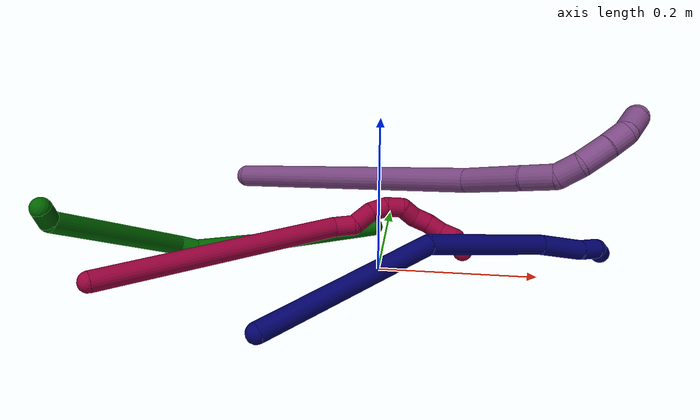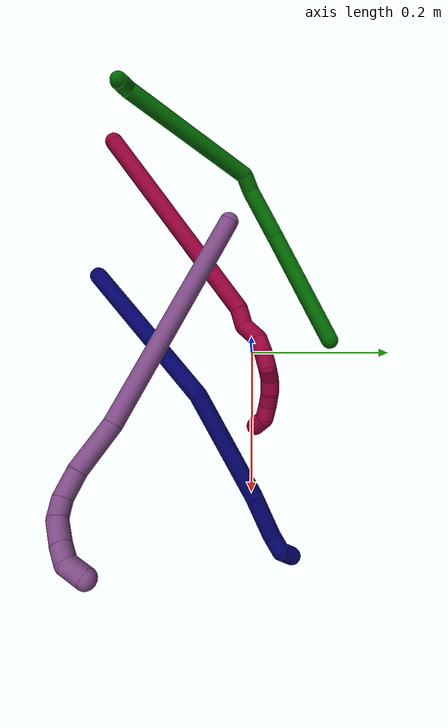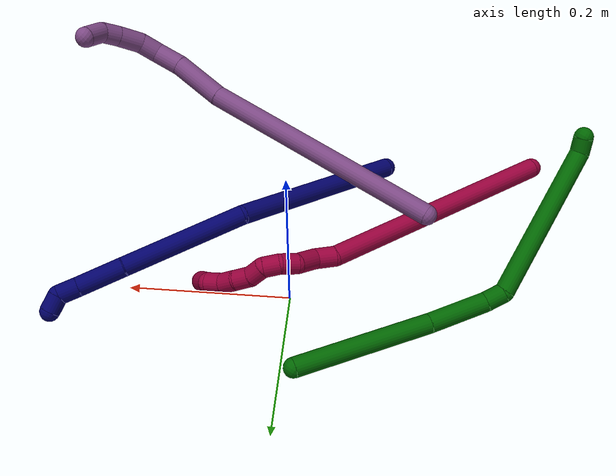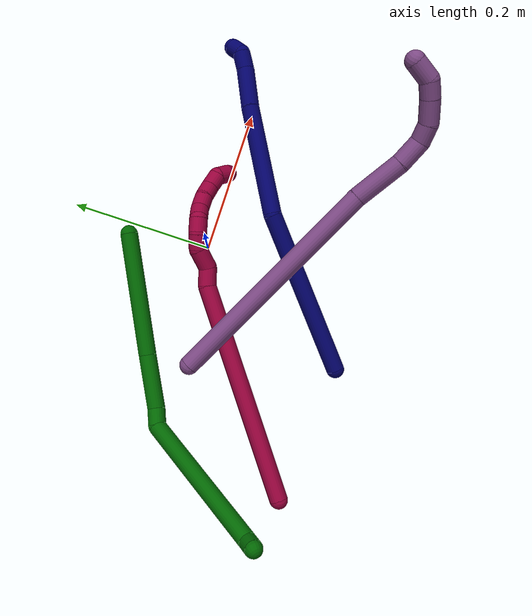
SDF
<sdf version="1.7">
 <world name="default">
  <model name="6">
   <static>0</static>
   <link name="6">
    <collision name="collision-cylinder-e_1_1_4">
     <pose>-0.003291 -0.003334 -0.009466 2.80295 -0.316846 -1.5031</pose>
     <geometry><cylinder><radius>0.0125</radius><length>0.021124</length></cylinder></geometry>
     <surface>
      <friction><ode><mu>1.16</mu><mu2>1.16</mu2><slip1>0</slip1><slip2>0</slip2></ode></friction>
      <contact><ode><kp>1e+06</kp><kd>1</kd><max_vel>0</max_vel><min_depth>0.001</min_depth></ode></contact>
     </surface>
    </collision>
    <visual name="visual-cylinder-e_1_1_4">
     <pose>-0.003291 -0.003334 -0.009466 2.80295 -0.316846 -1.5031</pose>
     <geometry><cylinder><radius>0.0125</radius><length>0.021124</length></cylinder></geometry>
     <material><ambient>0 0.392157 0.003922 1</ambient></material>
    </visual>
    <collision name="collision-cylinder-e_2_4_5">
     <pose>-0.011107 0.020257 -0.116627 -2.87266 -0.044626 0.326982</pose>
     <geometry><cylinder><radius>0.0125</radius><length>0.202875</length></cylinder></geometry>
     <surface>
      <friction><ode><mu>1.16</mu><mu2>1.16</mu2><slip1>0</slip1><slip2>0</slip2></ode></friction>
      <contact><ode><kp>1e+06</kp><kd>1</kd><max_vel>0</max_vel><min_depth>0.001</min_depth></ode></contact>
     </surface>
    </collision>
    <visual name="visual-cylinder-e_2_4_5">
     <pose>-0.011107 0.020257 -0.116627 -2.87266 -0.044626 0.326982</pose>
     <geometry><cylinder><radius>0.0125</radius><length>0.202875</length></cylinder></geometry>
     <material><ambient>0 0.392157 0.003922 1</ambient></material>
    </visual>
    <collision name="collision-cylinder-e_3_5_6">
     <pose>-0.009254 0.048032 -0.225055 -3.06265 0.534796 -2.85525</pose>
     <geometry><cylinder><radius>0.0125</radius><length>0.02503</length></cylinder></geometry>
     <surface>
      <friction><ode><mu>1.16</mu><mu2>1.16</mu2><slip1>0</slip1><slip2>0</slip2></ode></friction>
      <contact><ode><kp>1e+06</kp><kd>1</kd><max_vel>0</max_vel><min_depth>0.001</min_depth></ode></contact>
     </surface>
    </collision>
    <visual name="visual-cylinder-e_3_5_6">
     <pose>-0.009254 0.048032 -0.225055 -3.06265 0.534796 -2.85525</pose>
     <geometry><cylinder><radius>0.0125</radius><length>0.02503</length></cylinder></geometry>
     <material><ambient>0 0.392157 0.003922 1</ambient></material>
    </visual>
    <collision name="collision-cylinder-e_4_6_7">
     <pose>0.019598 0.062392 -0.263879 -2.69327 0.624649 -1.91198</pose>
     <geometry><cylinder><radius>0.0125</radius><length>0.076855</length></cylinder></geometry>
     <surface>
      <friction><ode><mu>1.16</mu><mu2>1.16</mu2><slip1>0</slip1><slip2>0</slip2></ode></friction>
      <contact><ode><kp>1e+06</kp><kd>1</kd><max_vel>0</max_vel><min_depth>0.001</min_depth></ode></contact>
     </surface>
    </collision>
    <visual name="visual-cylinder-e_4_6_7">
     <pose>0.019598 0.062392 -0.263879 -2.69327 0.624649 -1.91198</pose>
     <geometry><cylinder><radius>0.0125</radius><length>0.076855</length></cylinder></geometry>
     <material><ambient>0 0.392157 0.003922 1</ambient></material>
    </visual>
    <collision name="collision-cylinder-e_5_7_2">
     <pose>0.095633 0.108959 -0.352115 -2.63907 0.662712 -1.8596</pose>
     <geometry><cylinder><radius>0.0125</radius><length>0.174116</length></cylinder></geometry>
     <surface>
      <friction><ode><mu>1.16</mu><mu2>1.16</mu2><slip1>0</slip1><slip2>0</slip2></ode></friction>
      <contact><ode><kp>1e+06</kp><kd>1</kd><max_vel>0</max_vel><min_depth>0.001</min_depth></ode></contact>
     </surface>
    </collision>
    <visual name="visual-cylinder-e_5_7_2">
     <pose>0.095633 0.108959 -0.352115 -2.63907 0.662712 -1.8596</pose>
     <geometry><cylinder><radius>0.0125</radius><length>0.174116</length></cylinder></geometry>
     <material><ambient>0 0.392157 0.003922 1</ambient></material>
    </visual>
    <collision name="collision-sphere-2">
     <pose>0.149196 0.142013 -0.412261 0 -0 0</pose>
     <geometry><sphere><radius>0.0125</radius></sphere></geometry>
     <surface>
      <friction><ode><mu>1.16</mu><mu2>1.16</mu2><slip1>0</slip1><slip2>0</slip2></ode></friction>
      <contact><ode><kp>1e+06</kp><kd>1</kd><max_vel>0</max_vel><min_depth>0.001</min_depth></ode></contact>
     </surface>
    </collision>
    <visual name="visual-sphere-2">
     <pose>0.149196 0.142013 -0.412261 0 -0 0</pose>
     <geometry><sphere><radius>0.0125</radius></sphere></geometry>
     <material><ambient>0 0.392157 0.003922 1</ambient></material>
    </visual>
    <collision name="collision-sphere-7">
     <pose>0.04207 0.075904 -0.29197 0 -0 0</pose>
     <geometry><sphere><radius>0.0125</radius></sphere></geometry>
     <surface>
      <friction><ode><mu>1.16</mu><mu2>1.16</mu2><slip1>0</slip1><slip2>0</slip2></ode></friction>
      <contact><ode><kp>1e+06</kp><kd>1</kd><max_vel>0</max_vel><min_depth>0.001</min_depth></ode></contact>
     </surface>
    </collision>
    <visual name="visual-sphere-7">
     <pose>0.04207 0.075904 -0.29197 0 -0 0</pose>
     <geometry><sphere><radius>0.0125</radius></sphere></geometry>
     <material><ambient>0 0.392157 0.003922 1</ambient></material>
    </visual>
    <collision name="collision-sphere-6">
     <pose>-0.002875 0.048881 -0.235789 0 -0 0</pose>
     <geometry><sphere><radius>0.0125</radius></sphere></geometry>
     <surface>
      <friction><ode><mu>1.16</mu><mu2>1.16</mu2><slip1>0</slip1><slip2>0</slip2></ode></friction>
      <contact><ode><kp>1e+06</kp><kd>1</kd><max_vel>0</max_vel><min_depth>0.001</min_depth></ode></contact>
     </surface>
    </collision>
    <visual name="visual-sphere-6">
     <pose>-0.002875 0.048881 -0.235789 0 -0 0</pose>
     <geometry><sphere><radius>0.0125</radius></sphere></geometry>
     <material><ambient>0 0.392157 0.003922 1</ambient></material>
    </visual>
    <collision name="collision-sphere-5">
     <pose>-0.015632 0.047183 -0.214321 0 -0 0</pose>
     <geometry><sphere><radius>0.0125</radius></sphere></geometry>
     <surface>
      <friction><ode><mu>1.16</mu><mu2>1.16</mu2><slip1>0</slip1><slip2>0</slip2></ode></friction>
      <contact><ode><kp>1e+06</kp><kd>1</kd><max_vel>0</max_vel><min_depth>0.001</min_depth></ode></contact>
     </surface>
    </collision>
    <visual name="visual-sphere-5">
     <pose>-0.015632 0.047183 -0.214321 0 -0 0</pose>
     <geometry><sphere><radius>0.0125</radius></sphere></geometry>
     <material><ambient>0 0.392157 0.003922 1</ambient></material>
    </visual>
    <collision name="collision-sphere-1">
     <geometry><sphere><radius>0.0125</radius></sphere></geometry>
     <surface>
      <friction><ode><mu>1.16</mu><mu2>1.16</mu2><slip1>0</slip1><slip2>0</slip2></ode></friction>
      <contact><ode><kp>1e+06</kp><kd>1</kd><max_vel>0</max_vel><min_depth>0.001</min_depth></ode></contact>
     </surface>
    </collision>
    <visual name="visual-sphere-1">
     <geometry><sphere><radius>0.0125</radius></sphere></geometry>
     <material><ambient>0 0.392157 0.003922 1</ambient></material>
    </visual>
    <collision name="collision-sphere-4">
     <pose>-0.006582 -0.006668 -0.018933 0 -0 0</pose>
     <geometry><sphere><radius>0.0125</radius></sphere></geometry>
     <surface>
      <friction><ode><mu>1.16</mu><mu2>1.16</mu2><slip1>0</slip1><slip2>0</slip2></ode></friction>
      <contact><ode><kp>1e+06</kp><kd>1</kd><max_vel>0</max_vel><min_depth>0.001</min_depth></ode></contact>
     </surface>
    </collision>
    <visual name="visual-sphere-4">
     <pose>-0.006582 -0.006668 -0.018933 0 -0 0</pose>
     <geometry><sphere><radius>0.0125</radius></sphere></geometry>
     <material><ambient>0 0.392157 0.003922 1</ambient></material>
    </visual>
    <inertial>
     <pose>0.031206 0.058016 -0.222166 0 -0 0</pose>
     <mass>0.5</mass>
     <inertia>
      <ixx>0.000419</ixx>
      <ixy>0</ixy>
      <ixz>0</ixz>
      <iyy>-0.000511</iyy>
      <iyz>0</iyz>
      <izz>-0.000671</izz>
     </inertia>
    </inertial>
   </link>
   <pose>-0.351128 -0.178653 0.135947 0.81982 -0.305247 -0.396053</pose>
  </model>
  <model name="7">
   <static>0</static>
   <link name="7">
    <collision name="collision-cylinder-e_1_1_4">
     <pose>0.075705 0.045962 -0.076062 -2.59804 0.705569 -1.84583</pose>
     <geometry><cylinder><radius>0.0125</radius><length>0.233488</length></cylinder></geometry>
     <surface>
      <friction><ode><mu>1.16</mu><mu2>1.16</mu2><slip1>0</slip1><slip2>0</slip2></ode></friction>
      <contact><ode><kp>1e+06</kp><kd>1</kd><max_vel>0</max_vel><min_depth>0.001</min_depth></ode></contact>
     </surface>
    </collision>
    <visual name="visual-cylinder-e_1_1_4">
     <pose>0.075705 0.045962 -0.076062 -2.59804 0.705569 -1.84583</pose>
     <geometry><cylinder><radius>0.0125</radius><length>0.233488</length></cylinder></geometry>
     <material><ambient>0.003922 0 0.403922 1</ambient></material>
    </visual>
    <collision name="collision-cylinder-e_2_4_5">
     <pose>0.206139 0.091307 -0.209492 3.13085 0.761841 3.11477</pose>
     <geometry><cylinder><radius>0.0125</radius><length>0.158578</length></cylinder></geometry>
     <surface>
      <friction><ode><mu>1.16</mu><mu2>1.16</mu2><slip1>0</slip1><slip2>0</slip2></ode></friction>
      <contact><ode><kp>1e+06</kp><kd>1</kd><max_vel>0</max_vel><min_depth>0.001</min_depth></ode></contact>
     </surface>
    </collision>
    <visual name="visual-cylinder-e_2_4_5">
     <pose>0.206139 0.091307 -0.209492 3.13085 0.761841 3.11477</pose>
     <geometry><cylinder><radius>0.0125</radius><length>0.158578</length></cylinder></geometry>
     <material><ambient>0.003922 0 0.403922 1</ambient></material>
    </visual>
    <collision name="collision-cylinder-e_3_5_6">
     <pose>0.281809 0.086966 -0.288148 2.96839 0.769643 2.71926</pose>
     <geometry><cylinder><radius>0.0125</radius><length>0.060185</length></cylinder></geometry>
     <surface>
      <friction><ode><mu>1.16</mu><mu2>1.16</mu2><slip1>0</slip1><slip2>0</slip2></ode></friction>
      <contact><ode><kp>1e+06</kp><kd>1</kd><max_vel>0</max_vel><min_depth>0.001</min_depth></ode></contact>
     </surface>
    </collision>
    <visual name="visual-cylinder-e_3_5_6">
     <pose>0.281809 0.086966 -0.288148 2.96839 0.769643 2.71926</pose>
     <geometry><cylinder><radius>0.0125</radius><length>0.060185</length></cylinder></geometry>
     <material><ambient>0.003922 0 0.403922 1</ambient></material>
    </visual>
    <collision name="collision-cylinder-e_4_6_7">
     <pose>0.311758 0.083971 -0.318772 -3.06366 0.766004 -2.94867</pose>
     <geometry><cylinder><radius>0.0125</radius><length>0.025988</length></cylinder></geometry>
     <surface>
      <friction><ode><mu>1.16</mu><mu2>1.16</mu2><slip1>0</slip1><slip2>0</slip2></ode></friction>
      <contact><ode><kp>1e+06</kp><kd>1</kd><max_vel>0</max_vel><min_depth>0.001</min_depth></ode></contact>
     </surface>
    </collision>
    <visual name="visual-cylinder-e_4_6_7">
     <pose>0.311758 0.083971 -0.318772 -3.06366 0.766004 -2.94867</pose>
     <geometry><cylinder><radius>0.0125</radius><length>0.025988</length></cylinder></geometry>
     <material><ambient>0.003922 0 0.403922 1</ambient></material>
    </visual>
    <collision name="collision-cylinder-e_5_7_2">
     <pose>0.321606 0.082952 -0.338814 2.97973 0.077251 0.889294</pose>
     <geometry><cylinder><radius>0.0125</radius><length>0.021761</length></cylinder></geometry>
     <surface>
      <friction><ode><mu>1.16</mu><mu2>1.16</mu2><slip1>0</slip1><slip2>0</slip2></ode></friction>
      <contact><ode><kp>1e+06</kp><kd>1</kd><max_vel>0</max_vel><min_depth>0.001</min_depth></ode></contact>
     </surface>
    </collision>
    <visual name="visual-cylinder-e_5_7_2">
     <pose>0.321606 0.082952 -0.338814 2.97973 0.077251 0.889294</pose>
     <geometry><cylinder><radius>0.0125</radius><length>0.021761</length></cylinder></geometry>
     <material><ambient>0.003922 0 0.403922 1</ambient></material>
    </visual>
    <collision name="collision-sphere-2">
     <pose>0.322446 0.081204 -0.349521 0 -0 0</pose>
     <geometry><sphere><radius>0.0125</radius></sphere></geometry>
     <surface>
      <friction><ode><mu>1.16</mu><mu2>1.16</mu2><slip1>0</slip1><slip2>0</slip2></ode></friction>
      <contact><ode><kp>1e+06</kp><kd>1</kd><max_vel>0</max_vel><min_depth>0.001</min_depth></ode></contact>
     </surface>
    </collision>
    <visual name="visual-sphere-2">
     <pose>0.322446 0.081204 -0.349521 0 -0 0</pose>
     <geometry><sphere><radius>0.0125</radius></sphere></geometry>
     <material><ambient>0.003922 0 0.403922 1</ambient></material>
    </visual>
    <collision name="collision-sphere-7">
     <pose>0.320766 0.0847 -0.328108 0 -0 0</pose>
     <geometry><sphere><radius>0.0125</radius></sphere></geometry>
     <surface>
      <friction><ode><mu>1.16</mu><mu2>1.16</mu2><slip1>0</slip1><slip2>0</slip2></ode></friction>
      <contact><ode><kp>1e+06</kp><kd>1</kd><max_vel>0</max_vel><min_depth>0.001</min_depth></ode></contact>
     </surface>
    </collision>
    <visual name="visual-sphere-7">
     <pose>0.320766 0.0847 -0.328108 0 -0 0</pose>
     <geometry><sphere><radius>0.0125</radius></sphere></geometry>
     <material><ambient>0.003922 0 0.403922 1</ambient></material>
    </visual>
    <collision name="collision-sphere-6">
     <pose>0.30275 0.083242 -0.309436 0 -0 0</pose>
     <geometry><sphere><radius>0.0125</radius></sphere></geometry>
     <surface>
      <friction><ode><mu>1.16</mu><mu2>1.16</mu2><slip1>0</slip1><slip2>0</slip2></ode></friction>
      <contact><ode><kp>1e+06</kp><kd>1</kd><max_vel>0</max_vel><min_depth>0.001</min_depth></ode></contact>
     </surface>
    </collision>
    <visual name="visual-sphere-6">
     <pose>0.30275 0.083242 -0.309436 0 -0 0</pose>
     <geometry><sphere><radius>0.0125</radius></sphere></geometry>
     <material><ambient>0.003922 0 0.403922 1</ambient></material>
    </visual>
    <collision name="collision-sphere-5">
     <pose>0.260868 0.090691 -0.26686 0 -0 0</pose>
     <geometry><sphere><radius>0.0125</radius></sphere></geometry>
     <surface>
      <friction><ode><mu>1.16</mu><mu2>1.16</mu2><slip1>0</slip1><slip2>0</slip2></ode></friction>
      <contact><ode><kp>1e+06</kp><kd>1</kd><max_vel>0</max_vel><min_depth>0.001</min_depth></ode></contact>
     </surface>
    </collision>
    <visual name="visual-sphere-5">
     <pose>0.260868 0.090691 -0.26686 0 -0 0</pose>
     <geometry><sphere><radius>0.0125</radius></sphere></geometry>
     <material><ambient>0.003922 0 0.403922 1</ambient></material>
    </visual>
    <collision name="collision-sphere-1">
     <geometry><sphere><radius>0.0125</radius></sphere></geometry>
     <surface>
      <friction><ode><mu>1.16</mu><mu2>1.16</mu2><slip1>0</slip1><slip2>0</slip2></ode></friction>
      <contact><ode><kp>1e+06</kp><kd>1</kd><max_vel>0</max_vel><min_depth>0.001</min_depth></ode></contact>
     </surface>
    </collision>
    <visual name="visual-sphere-1">
     <geometry><sphere><radius>0.0125</radius></sphere></geometry>
     <material><ambient>0.003922 0 0.403922 1</ambient></material>
    </visual>
    <collision name="collision-sphere-4">
     <pose>0.151409 0.091923 -0.152125 0 -0 0</pose>
     <geometry><sphere><radius>0.0125</radius></sphere></geometry>
     <surface>
      <friction><ode><mu>1.16</mu><mu2>1.16</mu2><slip1>0</slip1><slip2>0</slip2></ode></friction>
      <contact><ode><kp>1e+06</kp><kd>1</kd><max_vel>0</max_vel><min_depth>0.001</min_depth></ode></contact>
     </surface>
    </collision>
    <visual name="visual-sphere-4">
     <pose>0.151409 0.091923 -0.152125 0 -0 0</pose>
     <geometry><sphere><radius>0.0125</radius></sphere></geometry>
     <material><ambient>0.003922 0 0.403922 1</ambient></material>
    </visual>
    <inertial>
     <pose>0.164853 0.068865 -0.16796 0 -0 0</pose>
     <mass>0.5</mass>
     <inertia>
      <ixx>-0.001225</ixx>
      <ixy>0</ixy>
      <ixz>0</ixz>
      <iyy>0.000189</iyy>
      <iyz>0</iyz>
      <izz>-0.001387</izz>
     </inertia>
    </inertial>
   </link>
   <pose>-0.107982 -0.222675 0.025073 1.03193 -0.291861 -0.169791</pose>
  </model>
  <model name="8">
   <static>0</static>
   <link name="8">
    <collision name="collision-cylinder-e_1_1_4">
     <pose>0.097323 0.080687 0.083396 -0.76889 0.697895 -0.2923</pose>
     <geometry><cylinder><radius>0.0125</radius><length>0.3029</length></cylinder></geometry>
     <surface>
      <friction><ode><mu>1.16</mu><mu2>1.16</mu2><slip1>0</slip1><slip2>0</slip2></ode></friction>
      <contact><ode><kp>1e+06</kp><kd>1</kd><max_vel>0</max_vel><min_depth>0.001</min_depth></ode></contact>
     </surface>
    </collision>
    <visual name="visual-cylinder-e_1_1_4">
     <pose>0.097323 0.080687 0.083396 -0.76889 0.697895 -0.2923</pose>
     <geometry><cylinder><radius>0.0125</radius><length>0.3029</length></cylinder></geometry>
     <material><ambient>0.584314 0 0.227451 1</ambient></material>
    </visual>
    <collision name="collision-cylinder-e_2_4_5">
     <pose>0.20428 0.16406 0.174714 -0.326809 0.855899 -0.150129</pose>
     <geometry><cylinder><radius>0.0125</radius><length>0.025517</length></cylinder></geometry>
     <surface>
      <friction><ode><mu>1.16</mu><mu2>1.16</mu2><slip1>0</slip1><slip2>0</slip2></ode></friction>
      <contact><ode><kp>1e+06</kp><kd>1</kd><max_vel>0</max_vel><min_depth>0.001</min_depth></ode></contact>
     </surface>
    </collision>
    <visual name="visual-cylinder-e_2_4_5">
     <pose>0.20428 0.16406 0.174714 -0.326809 0.855899 -0.150129</pose>
     <geometry><cylinder><radius>0.0125</radius><length>0.025517</length></cylinder></geometry>
     <material><ambient>0.584314 0 0.227451 1</ambient></material>
    </visual>
    <collision name="collision-cylinder-e_3_5_6">
     <pose>0.218271 0.175131 0.193833 -0.642772 0.301845 -0.101177</pose>
     <geometry><cylinder><radius>0.0125</radius><length>0.029307</length></cylinder></geometry>
     <surface>
      <friction><ode><mu>1.16</mu><mu2>1.16</mu2><slip1>0</slip1><slip2>0</slip2></ode></friction>
      <contact><ode><kp>1e+06</kp><kd>1</kd><max_vel>0</max_vel><min_depth>0.001</min_depth></ode></contact>
     </surface>
    </collision>
    <visual name="visual-cylinder-e_3_5_6">
     <pose>0.218271 0.175131 0.193833 -0.642772 0.301845 -0.101177</pose>
     <geometry><cylinder><radius>0.0125</radius><length>0.029307</length></cylinder></geometry>
     <material><ambient>0.584314 0 0.227451 1</ambient></material>
    </visual>
    <collision name="collision-cylinder-e_4_6_7">
     <pose>0.229137 0.185973 0.213304 -0.288583 0.646324 -0.097247</pose>
     <geometry><cylinder><radius>0.0125</radius><length>0.021618</length></cylinder></geometry>
     <surface>
      <friction><ode><mu>1.16</mu><mu2>1.16</mu2><slip1>0</slip1><slip2>0</slip2></ode></friction>
      <contact><ode><kp>1e+06</kp><kd>1</kd><max_vel>0</max_vel><min_depth>0.001</min_depth></ode></contact>
     </surface>
    </collision>
    <visual name="visual-cylinder-e_4_6_7">
     <pose>0.229137 0.185973 0.213304 -0.288583 0.646324 -0.097247</pose>
     <geometry><cylinder><radius>0.0125</radius><length>0.021618</length></cylinder></geometry>
     <material><ambient>0.584314 0 0.227451 1</ambient></material>
    </visual>
    <collision name="collision-cylinder-e_5_7_8">
     <pose>0.244311 0.190455 0.226772 -0.371944 0.99887 -0.204577</pose>
     <geometry><cylinder><radius>0.0125</radius><length>0.020609</length></cylinder></geometry>
     <surface>
      <friction><ode><mu>1.16</mu><mu2>1.16</mu2><slip1>0</slip1><slip2>0</slip2></ode></friction>
      <contact><ode><kp>1e+06</kp><kd>1</kd><max_vel>0</max_vel><min_depth>0.001</min_depth></ode></contact>
     </surface>
    </collision>
    <visual name="visual-cylinder-e_5_7_8">
     <pose>0.244311 0.190455 0.226772 -0.371944 0.99887 -0.204577</pose>
     <geometry><cylinder><radius>0.0125</radius><length>0.020609</length></cylinder></geometry>
     <material><ambient>0.584314 0 0.227451 1</ambient></material>
    </visual>
    <collision name="collision-cylinder-e_6_8_9">
     <pose>0.262731 0.194475 0.230974 -2.03355 1.34639 -1.82201</pose>
     <geometry><cylinder><radius>0.0125</radius><length>0.020012</length></cylinder></geometry>
     <surface>
      <friction><ode><mu>1.16</mu><mu2>1.16</mu2><slip1>0</slip1><slip2>0</slip2></ode></friction>
      <contact><ode><kp>1e+06</kp><kd>1</kd><max_vel>0</max_vel><min_depth>0.001</min_depth></ode></contact>
     </surface>
    </collision>
    <visual name="visual-cylinder-e_6_8_9">
     <pose>0.262731 0.194475 0.230974 -2.03355 1.34639 -1.82201</pose>
     <geometry><cylinder><radius>0.0125</radius><length>0.020012</length></cylinder></geometry>
     <material><ambient>0.584314 0 0.227451 1</ambient></material>
    </visual>
    <collision name="collision-cylinder-e_7_9_10">
     <pose>0.282273 0.196456 0.232112 0.00544 1.35628 0.004382</pose>
     <geometry><cylinder><radius>0.0125</radius><length>0.020034</length></cylinder></geometry>
     <surface>
      <friction><ode><mu>1.16</mu><mu2>1.16</mu2><slip1>0</slip1><slip2>0</slip2></ode></friction>
      <contact><ode><kp>1e+06</kp><kd>1</kd><max_vel>0</max_vel><min_depth>0.001</min_depth></ode></contact>
     </surface>
    </collision>
    <visual name="visual-cylinder-e_7_9_10">
     <pose>0.282273 0.196456 0.232112 0.00544 1.35628 0.004382</pose>
     <geometry><cylinder><radius>0.0125</radius><length>0.020034</length></cylinder></geometry>
     <material><ambient>0.584314 0 0.227451 1</ambient></material>
    </visual>
    <collision name="collision-cylinder-e_8_10_11">
     <pose>0.301958 0.195126 0.23481 1.16546 1.42685 1.03679</pose>
     <geometry><cylinder><radius>0.0125</radius><length>0.020002</length></cylinder></geometry>
     <surface>
      <friction><ode><mu>1.16</mu><mu2>1.16</mu2><slip1>0</slip1><slip2>0</slip2></ode></friction>
      <contact><ode><kp>1e+06</kp><kd>1</kd><max_vel>0</max_vel><min_depth>0.001</min_depth></ode></contact>
     </surface>
    </collision>
    <visual name="visual-cylinder-e_8_10_11">
     <pose>0.301958 0.195126 0.23481 1.16546 1.42685 1.03679</pose>
     <geometry><cylinder><radius>0.0125</radius><length>0.020002</length></cylinder></geometry>
     <material><ambient>0.584314 0 0.227451 1</ambient></material>
    </visual>
    <collision name="collision-cylinder-e_9_11_12">
     <pose>0.321079 0.191146 0.238178 0.759565 1.17399 0.519073</pose>
     <geometry><cylinder><radius>0.0125</radius><length>0.020001</length></cylinder></geometry>
     <surface>
      <friction><ode><mu>1.16</mu><mu2>1.16</mu2><slip1>0</slip1><slip2>0</slip2></ode></friction>
      <contact><ode><kp>1e+06</kp><kd>1</kd><max_vel>0</max_vel><min_depth>0.001</min_depth></ode></contact>
     </surface>
    </collision>
    <visual name="visual-cylinder-e_9_11_12">
     <pose>0.321079 0.191146 0.238178 0.759565 1.17399 0.519073</pose>
     <geometry><cylinder><radius>0.0125</radius><length>0.020001</length></cylinder></geometry>
     <material><ambient>0.584314 0 0.227451 1</ambient></material>
    </visual>
    <collision name="collision-cylinder-e_10_12_2">
     <pose>0.338041 0.182823 0.238138 2.03622 0.884777 1.30983</pose>
     <geometry><cylinder><radius>0.0125</radius><length>0.020001</length></cylinder></geometry>
     <surface>
      <friction><ode><mu>1.16</mu><mu2>1.16</mu2><slip1>0</slip1><slip2>0</slip2></ode></friction>
      <contact><ode><kp>1e+06</kp><kd>1</kd><max_vel>0</max_vel><min_depth>0.001</min_depth></ode></contact>
     </surface>
    </collision>
    <visual name="visual-cylinder-e_10_12_2">
     <pose>0.338041 0.182823 0.238138 2.03622 0.884777 1.30983</pose>
     <geometry><cylinder><radius>0.0125</radius><length>0.020001</length></cylinder></geometry>
     <material><ambient>0.584314 0 0.227451 1</ambient></material>
    </visual>
    <collision name="collision-sphere-2">
     <pose>0.345779 0.177162 0.235295 0 -0 0</pose>
     <geometry><sphere><radius>0.0125</radius></sphere></geometry>
     <surface>
      <friction><ode><mu>1.16</mu><mu2>1.16</mu2><slip1>0</slip1><slip2>0</slip2></ode></friction>
      <contact><ode><kp>1e+06</kp><kd>1</kd><max_vel>0</max_vel><min_depth>0.001</min_depth></ode></contact>
     </surface>
    </collision>
    <visual name="visual-sphere-2">
     <pose>0.345779 0.177162 0.235295 0 -0 0</pose>
     <geometry><sphere><radius>0.0125</radius></sphere></geometry>
     <material><ambient>0.584314 0 0.227451 1</ambient></material>
    </visual>
    <collision name="collision-sphere-12">
     <pose>0.330303 0.188484 0.240981 0 -0 0</pose>
     <geometry><sphere><radius>0.0125</radius></sphere></geometry>
     <surface>
      <friction><ode><mu>1.16</mu><mu2>1.16</mu2><slip1>0</slip1><slip2>0</slip2></ode></friction>
      <contact><ode><kp>1e+06</kp><kd>1</kd><max_vel>0</max_vel><min_depth>0.001</min_depth></ode></contact>
     </surface>
    </collision>
    <visual name="visual-sphere-12">
     <pose>0.330303 0.188484 0.240981 0 -0 0</pose>
     <geometry><sphere><radius>0.0125</radius></sphere></geometry>
     <material><ambient>0.584314 0 0.227451 1</ambient></material>
    </visual>
    <collision name="collision-sphere-11">
     <pose>0.311856 0.193807 0.235376 0 -0 0</pose>
     <geometry><sphere><radius>0.0125</radius></sphere></geometry>
     <surface>
      <friction><ode><mu>1.16</mu><mu2>1.16</mu2><slip1>0</slip1><slip2>0</slip2></ode></friction>
      <contact><ode><kp>1e+06</kp><kd>1</kd><max_vel>0</max_vel><min_depth>0.001</min_depth></ode></contact>
     </surface>
    </collision>
    <visual name="visual-sphere-11">
     <pose>0.311856 0.193807 0.235376 0 -0 0</pose>
     <geometry><sphere><radius>0.0125</radius></sphere></geometry>
     <material><ambient>0.584314 0 0.227451 1</ambient></material>
    </visual>
    <collision name="collision-sphere-10">
     <pose>0.292061 0.196444 0.234244 0 -0 0</pose>
     <geometry><sphere><radius>0.0125</radius></sphere></geometry>
     <surface>
      <friction><ode><mu>1.16</mu><mu2>1.16</mu2><slip1>0</slip1><slip2>0</slip2></ode></friction>
      <contact><ode><kp>1e+06</kp><kd>1</kd><max_vel>0</max_vel><min_depth>0.001</min_depth></ode></contact>
     </surface>
    </collision>
    <visual name="visual-sphere-10">
     <pose>0.292061 0.196444 0.234244 0 -0 0</pose>
     <geometry><sphere><radius>0.0125</radius></sphere></geometry>
     <material><ambient>0.584314 0 0.227451 1</ambient></material>
    </visual>
    <collision name="collision-sphere-9">
     <pose>0.272486 0.196467 0.22998 0 -0 0</pose>
     <geometry><sphere><radius>0.0125</radius></sphere></geometry>
     <surface>
      <friction><ode><mu>1.16</mu><mu2>1.16</mu2><slip1>0</slip1><slip2>0</slip2></ode></friction>
      <contact><ode><kp>1e+06</kp><kd>1</kd><max_vel>0</max_vel><min_depth>0.001</min_depth></ode></contact>
     </surface>
    </collision>
    <visual name="visual-sphere-9">
     <pose>0.272486 0.196467 0.22998 0 -0 0</pose>
     <geometry><sphere><radius>0.0125</radius></sphere></geometry>
     <material><ambient>0.584314 0 0.227451 1</ambient></material>
    </visual>
    <collision name="collision-sphere-4">
     <pose>0.194646 0.161375 0.166793 0 -0 0</pose>
     <geometry><sphere><radius>0.0125</radius></sphere></geometry>
     <surface>
      <friction><ode><mu>1.16</mu><mu2>1.16</mu2><slip1>0</slip1><slip2>0</slip2></ode></friction>
      <contact><ode><kp>1e+06</kp><kd>1</kd><max_vel>0</max_vel><min_depth>0.001</min_depth></ode></contact>
     </surface>
    </collision>
    <visual name="visual-sphere-4">
     <pose>0.194646 0.161375 0.166793 0 -0 0</pose>
     <geometry><sphere><radius>0.0125</radius></sphere></geometry>
     <material><ambient>0.584314 0 0.227451 1</ambient></material>
    </visual>
    <collision name="collision-sphere-1">
     <geometry><sphere><radius>0.0125</radius></sphere></geometry>
     <surface>
      <friction><ode><mu>1.16</mu><mu2>1.16</mu2><slip1>0</slip1><slip2>0</slip2></ode></friction>
      <contact><ode><kp>1e+06</kp><kd>1</kd><max_vel>0</max_vel><min_depth>0.001</min_depth></ode></contact>
     </surface>
    </collision>
    <visual name="visual-sphere-1">
     <geometry><sphere><radius>0.0125</radius></sphere></geometry>
     <material><ambient>0.584314 0 0.227451 1</ambient></material>
    </visual>
    <collision name="collision-sphere-8">
     <pose>0.252976 0.192482 0.231968 0 -0 0</pose>
     <geometry><sphere><radius>0.0125</radius></sphere></geometry>
     <surface>
      <friction><ode><mu>1.16</mu><mu2>1.16</mu2><slip1>0</slip1><slip2>0</slip2></ode></friction>
      <contact><ode><kp>1e+06</kp><kd>1</kd><max_vel>0</max_vel><min_depth>0.001</min_depth></ode></contact>
     </surface>
    </collision>
    <visual name="visual-sphere-8">
     <pose>0.252976 0.192482 0.231968 0 -0 0</pose>
     <geometry><sphere><radius>0.0125</radius></sphere></geometry>
     <material><ambient>0.584314 0 0.227451 1</ambient></material>
    </visual>
    <collision name="collision-sphere-5">
     <pose>0.213915 0.166745 0.182635 0 -0 0</pose>
     <geometry><sphere><radius>0.0125</radius></sphere></geometry>
     <surface>
      <friction><ode><mu>1.16</mu><mu2>1.16</mu2><slip1>0</slip1><slip2>0</slip2></ode></friction>
      <contact><ode><kp>1e+06</kp><kd>1</kd><max_vel>0</max_vel><min_depth>0.001</min_depth></ode></contact>
     </surface>
    </collision>
    <visual name="visual-sphere-5">
     <pose>0.213915 0.166745 0.182635 0 -0 0</pose>
     <geometry><sphere><radius>0.0125</radius></sphere></geometry>
     <material><ambient>0.584314 0 0.227451 1</ambient></material>
    </visual>
    <collision name="collision-sphere-6">
     <pose>0.222627 0.183517 0.205032 0 -0 0</pose>
     <geometry><sphere><radius>0.0125</radius></sphere></geometry>
     <surface>
      <friction><ode><mu>1.16</mu><mu2>1.16</mu2><slip1>0</slip1><slip2>0</slip2></ode></friction>
      <contact><ode><kp>1e+06</kp><kd>1</kd><max_vel>0</max_vel><min_depth>0.001</min_depth></ode></contact>
     </surface>
    </collision>
    <visual name="visual-sphere-6">
     <pose>0.222627 0.183517 0.205032 0 -0 0</pose>
     <geometry><sphere><radius>0.0125</radius></sphere></geometry>
     <material><ambient>0.584314 0 0.227451 1</ambient></material>
    </visual>
    <collision name="collision-sphere-7">
     <pose>0.235646 0.188429 0.221576 0 -0 0</pose>
     <geometry><sphere><radius>0.0125</radius></sphere></geometry>
     <surface>
      <friction><ode><mu>1.16</mu><mu2>1.16</mu2><slip1>0</slip1><slip2>0</slip2></ode></friction>
      <contact><ode><kp>1e+06</kp><kd>1</kd><max_vel>0</max_vel><min_depth>0.001</min_depth></ode></contact>
     </surface>
    </collision>
    <visual name="visual-sphere-7">
     <pose>0.235646 0.188429 0.221576 0 -0 0</pose>
     <geometry><sphere><radius>0.0125</radius></sphere></geometry>
     <material><ambient>0.584314 0 0.227451 1</ambient></material>
    </visual>
    <inertial>
     <pose>0.162425 0.121829 0.13636 0 -0 0</pose>
     <mass>0.5</mass>
     <inertia>
      <ixx>0.001229</ixx>
      <ixy>0</ixy>
      <ixz>0</ixz>
      <iyy>0.001416</iyy>
      <iyz>0</iyz>
      <izz>-0.002731</izz>
     </inertia>
    </inertial>
   </link>
   <pose>-0.297737 -0.199083 0.061054 -0.143531 0.621587 -0.010276</pose>
  </model>
  <model name="20">
   <static>0</static>
   <link name="20">
    <collision name="collision-cylinder-e_1_1_4">
     <pose>0.100164 0.017576 0.108308 -0.160878 0.739881 -0.062502</pose>
     <geometry><cylinder><radius>0.0125</radius><length>0.297136</length></cylinder></geometry>
     <surface>
      <friction><ode><mu>1.16</mu><mu2>1.16</mu2><slip1>0</slip1><slip2>0</slip2></ode></friction>
      <contact><ode><kp>1e+06</kp><kd>1</kd><max_vel>0</max_vel><min_depth>0.001</min_depth></ode></contact>
     </surface>
    </collision>
    <visual name="visual-cylinder-e_1_1_4">
     <pose>0.100164 0.017576 0.108308 -0.160878 0.739881 -0.062502</pose>
     <geometry><cylinder><radius>0.0125</radius><length>0.297136</length></cylinder></geometry>
     <material><ambient>0.478431 0.278431 0.509804 1</ambient></material>
    </visual>
    <collision name="collision-cylinder-e_2_4_5">
     <pose>0.221987 0.034214 0.240628 0.039047 0.733494 0.015001</pose>
     <geometry><cylinder><radius>0.0125</radius><length>0.064702</length></cylinder></geometry>
     <surface>
      <friction><ode><mu>1.16</mu><mu2>1.16</mu2><slip1>0</slip1><slip2>0</slip2></ode></friction>
      <contact><ode><kp>1e+06</kp><kd>1</kd><max_vel>0</max_vel><min_depth>0.001</min_depth></ode></contact>
     </surface>
    </collision>
    <visual name="visual-cylinder-e_2_4_5">
     <pose>0.221987 0.034214 0.240628 0.039047 0.733494 0.015001</pose>
     <geometry><cylinder><radius>0.0125</radius><length>0.064702</length></cylinder></geometry>
     <material><ambient>0.478431 0.278431 0.509804 1</ambient></material>
    </visual>
    <collision name="collision-cylinder-e_3_5_6">
     <pose>0.254244 0.035528 0.277653 -0.171398 0.676379 -0.06041</pose>
     <geometry><cylinder><radius>0.0125</radius><length>0.033865</length></cylinder></geometry>
     <surface>
      <friction><ode><mu>1.16</mu><mu2>1.16</mu2><slip1>0</slip1><slip2>0</slip2></ode></friction>
      <contact><ode><kp>1e+06</kp><kd>1</kd><max_vel>0</max_vel><min_depth>0.001</min_depth></ode></contact>
     </surface>
    </collision>
    <visual name="visual-cylinder-e_3_5_6">
     <pose>0.254244 0.035528 0.277653 -0.171398 0.676379 -0.06041</pose>
     <geometry><cylinder><radius>0.0125</radius><length>0.033865</length></cylinder></geometry>
     <material><ambient>0.478431 0.278431 0.509804 1</ambient></material>
    </visual>
    <collision name="collision-cylinder-e_4_6_7">
     <pose>0.267042 0.039963 0.302349 -0.184671 0.182932 -0.016986</pose>
     <geometry><cylinder><radius>0.0125</radius><length>0.024177</length></cylinder></geometry>
     <surface>
      <friction><ode><mu>1.16</mu><mu2>1.16</mu2><slip1>0</slip1><slip2>0</slip2></ode></friction>
      <contact><ode><kp>1e+06</kp><kd>1</kd><max_vel>0</max_vel><min_depth>0.001</min_depth></ode></contact>
     </surface>
    </collision>
    <visual name="visual-cylinder-e_4_6_7">
     <pose>0.267042 0.039963 0.302349 -0.184671 0.182932 -0.016986</pose>
     <geometry><cylinder><radius>0.0125</radius><length>0.024177</length></cylinder></geometry>
     <material><ambient>0.478431 0.278431 0.509804 1</ambient></material>
    </visual>
    <collision name="collision-cylinder-e_5_7_8">
     <pose>0.267852 0.04845 0.327919 -0.426159 -0.09082 0.019663</pose>
     <geometry><cylinder><radius>0.0125</radius><length>0.030625</length></cylinder></geometry>
     <surface>
      <friction><ode><mu>1.16</mu><mu2>1.16</mu2><slip1>0</slip1><slip2>0</slip2></ode></friction>
      <contact><ode><kp>1e+06</kp><kd>1</kd><max_vel>0</max_vel><min_depth>0.001</min_depth></ode></contact>
     </surface>
    </collision>
    <visual name="visual-cylinder-e_5_7_8">
     <pose>0.267852 0.04845 0.327919 -0.426159 -0.09082 0.019663</pose>
     <geometry><cylinder><radius>0.0125</radius><length>0.030625</length></cylinder></geometry>
     <material><ambient>0.478431 0.278431 0.509804 1</ambient></material>
    </visual>
    <collision name="collision-cylinder-e_6_8_9">
     <pose>0.264464 0.059747 0.351227 -0.487359 -0.185327 0.0462</pose>
     <geometry><cylinder><radius>0.0125</radius><length>0.0217</length></cylinder></geometry>
     <surface>
      <friction><ode><mu>1.16</mu><mu2>1.16</mu2><slip1>0</slip1><slip2>0</slip2></ode></friction>
      <contact><ode><kp>1e+06</kp><kd>1</kd><max_vel>0</max_vel><min_depth>0.001</min_depth></ode></contact>
     </surface>
    </collision>
    <visual name="visual-cylinder-e_6_8_9">
     <pose>0.264464 0.059747 0.351227 -0.487359 -0.185327 0.0462</pose>
     <geometry><cylinder><radius>0.0125</radius><length>0.0217</length></cylinder></geometry>
     <material><ambient>0.478431 0.278431 0.509804 1</ambient></material>
    </visual>
    <collision name="collision-cylinder-e_7_9_2">
     <pose>0.254826 0.073872 0.367821 -0.904976 -0.58195 0.289135</pose>
     <geometry><cylinder><radius>0.0125</radius><length>0.027796</length></cylinder></geometry>
     <surface>
      <friction><ode><mu>1.16</mu><mu2>1.16</mu2><slip1>0</slip1><slip2>0</slip2></ode></friction>
      <contact><ode><kp>1e+06</kp><kd>1</kd><max_vel>0</max_vel><min_depth>0.001</min_depth></ode></contact>
     </surface>
    </collision>
    <visual name="visual-cylinder-e_7_9_2">
     <pose>0.254826 0.073872 0.367821 -0.904976 -0.58195 0.289135</pose>
     <geometry><cylinder><radius>0.0125</radius><length>0.027796</length></cylinder></geometry>
     <material><ambient>0.478431 0.278431 0.509804 1</ambient></material>
    </visual>
    <collision name="collision-sphere-2">
     <pose>0.247187 0.083002 0.374993 0 -0 0</pose>
     <geometry><sphere><radius>0.0125</radius></sphere></geometry>
     <surface>
      <friction><ode><mu>1.16</mu><mu2>1.16</mu2><slip1>0</slip1><slip2>0</slip2></ode></friction>
      <contact><ode><kp>1e+06</kp><kd>1</kd><max_vel>0</max_vel><min_depth>0.001</min_depth></ode></contact>
     </surface>
    </collision>
    <visual name="visual-sphere-2">
     <pose>0.247187 0.083002 0.374993 0 -0 0</pose>
     <geometry><sphere><radius>0.0125</radius></sphere></geometry>
     <material><ambient>0.478431 0.278431 0.509804 1</ambient></material>
    </visual>
    <collision name="collision-sphere-9">
     <pose>0.262465 0.064741 0.36065 0 -0 0</pose>
     <geometry><sphere><radius>0.0125</radius></sphere></geometry>
     <surface>
      <friction><ode><mu>1.16</mu><mu2>1.16</mu2><slip1>0</slip1><slip2>0</slip2></ode></friction>
      <contact><ode><kp>1e+06</kp><kd>1</kd><max_vel>0</max_vel><min_depth>0.001</min_depth></ode></contact>
     </surface>
    </collision>
    <visual name="visual-sphere-9">
     <pose>0.262465 0.064741 0.36065 0 -0 0</pose>
     <geometry><sphere><radius>0.0125</radius></sphere></geometry>
     <material><ambient>0.478431 0.278431 0.509804 1</ambient></material>
    </visual>
    <collision name="collision-sphere-4">
     <pose>0.200329 0.035152 0.216615 0 -0 0</pose>
     <geometry><sphere><radius>0.0125</radius></sphere></geometry>
     <surface>
      <friction><ode><mu>1.16</mu><mu2>1.16</mu2><slip1>0</slip1><slip2>0</slip2></ode></friction>
      <contact><ode><kp>1e+06</kp><kd>1</kd><max_vel>0</max_vel><min_depth>0.001</min_depth></ode></contact>
     </surface>
    </collision>
    <visual name="visual-sphere-4">
     <pose>0.200329 0.035152 0.216615 0 -0 0</pose>
     <geometry><sphere><radius>0.0125</radius></sphere></geometry>
     <material><ambient>0.478431 0.278431 0.509804 1</ambient></material>
    </visual>
    <collision name="collision-sphere-1">
     <geometry><sphere><radius>0.0125</radius></sphere></geometry>
     <surface>
      <friction><ode><mu>1.16</mu><mu2>1.16</mu2><slip1>0</slip1><slip2>0</slip2></ode></friction>
      <contact><ode><kp>1e+06</kp><kd>1</kd><max_vel>0</max_vel><min_depth>0.001</min_depth></ode></contact>
     </surface>
    </collision>
    <visual name="visual-sphere-1">
     <geometry><sphere><radius>0.0125</radius></sphere></geometry>
     <material><ambient>0.478431 0.278431 0.509804 1</ambient></material>
    </visual>
    <collision name="collision-sphere-8">
     <pose>0.266464 0.054753 0.341804 0 -0 0</pose>
     <geometry><sphere><radius>0.0125</radius></sphere></geometry>
     <surface>
      <friction><ode><mu>1.16</mu><mu2>1.16</mu2><slip1>0</slip1><slip2>0</slip2></ode></friction>
      <contact><ode><kp>1e+06</kp><kd>1</kd><max_vel>0</max_vel><min_depth>0.001</min_depth></ode></contact>
     </surface>
    </collision>
    <visual name="visual-sphere-8">
     <pose>0.266464 0.054753 0.341804 0 -0 0</pose>
     <geometry><sphere><radius>0.0125</radius></sphere></geometry>
     <material><ambient>0.478431 0.278431 0.509804 1</ambient></material>
    </visual>
    <collision name="collision-sphere-5">
     <pose>0.243645 0.033276 0.264642 0 -0 0</pose>
     <geometry><sphere><radius>0.0125</radius></sphere></geometry>
     <surface>
      <friction><ode><mu>1.16</mu><mu2>1.16</mu2><slip1>0</slip1><slip2>0</slip2></ode></friction>
      <contact><ode><kp>1e+06</kp><kd>1</kd><max_vel>0</max_vel><min_depth>0.001</min_depth></ode></contact>
     </surface>
    </collision>
    <visual name="visual-sphere-5">
     <pose>0.243645 0.033276 0.264642 0 -0 0</pose>
     <geometry><sphere><radius>0.0125</radius></sphere></geometry>
     <material><ambient>0.478431 0.278431 0.509804 1</ambient></material>
    </visual>
    <collision name="collision-sphere-6">
     <pose>0.264843 0.037781 0.290664 0 -0 0</pose>
     <geometry><sphere><radius>0.0125</radius></sphere></geometry>
     <surface>
      <friction><ode><mu>1.16</mu><mu2>1.16</mu2><slip1>0</slip1><slip2>0</slip2></ode></friction>
      <contact><ode><kp>1e+06</kp><kd>1</kd><max_vel>0</max_vel><min_depth>0.001</min_depth></ode></contact>
     </surface>
    </collision>
    <visual name="visual-sphere-6">
     <pose>0.264843 0.037781 0.290664 0 -0 0</pose>
     <geometry><sphere><radius>0.0125</radius></sphere></geometry>
     <material><ambient>0.478431 0.278431 0.509804 1</ambient></material>
    </visual>
    <collision name="collision-sphere-7">
     <pose>0.269241 0.042146 0.314033 0 -0 0</pose>
     <geometry><sphere><radius>0.0125</radius></sphere></geometry>
     <surface>
      <friction><ode><mu>1.16</mu><mu2>1.16</mu2><slip1>0</slip1><slip2>0</slip2></ode></friction>
      <contact><ode><kp>1e+06</kp><kd>1</kd><max_vel>0</max_vel><min_depth>0.001</min_depth></ode></contact>
     </surface>
    </collision>
    <visual name="visual-sphere-7">
     <pose>0.269241 0.042146 0.314033 0 -0 0</pose>
     <geometry><sphere><radius>0.0125</radius></sphere></geometry>
     <material><ambient>0.478431 0.278431 0.509804 1</ambient></material>
    </visual>
    <inertial>
     <pose>0.160433 0.028878 0.184704 0 -0 0</pose>
     <mass>0.5</mass>
     <inertia>
      <ixx>0.001571</ixx>
      <ixy>0</ixy>
      <ixz>0</ixz>
      <iyy>0.002124</iyy>
      <iyz>0</iyz>
      <izz>-0.001735</izz>
     </inertia>
    </inertial>
   </link>
   <pose>-0.159196 -0.030095 0.13068 -0.584575 0.476006 -1.00245</pose>
  </model>
 </world>
</sdf>
